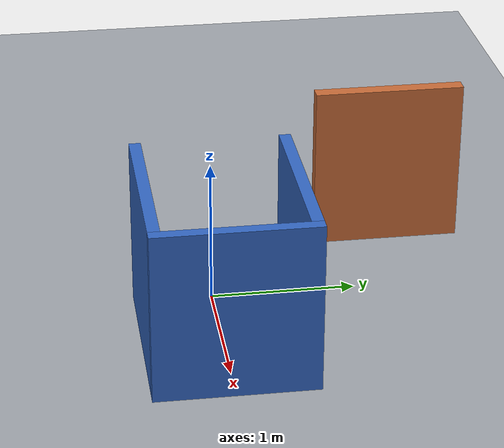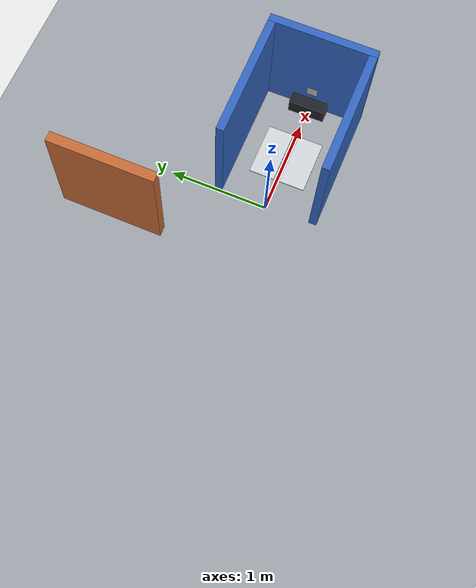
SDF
<?xml version="1.0"?>
<sdf version="1.6">
  <world name="go2w_parking_3d">
    <gravity>0 0 -9.81</gravity>
    <physics type="ode">
      <max_step_size>0.004</max_step_size>
      <real_time_update_rate>250</real_time_update_rate>
      <real_time_factor>1.0</real_time_factor>
      <ode><solver><type>quick</type><iters>20</iters><sor>1.3</sor></solver></ode>
    </physics>
    <scene>
      <ambient>0.68 0.68 0.68 1</ambient>
      <background>0.82 0.86 0.90 1</background>
      <shadows>false</shadows>
    </scene>
    <light name="sun" type="directional">
      <cast_shadows>false</cast_shadows>
      <pose>0 0 8 0 0 0</pose>
      <diffuse>0.95 0.95 0.95 1</diffuse>
      <direction>-0.4 0.2 -1</direction>
    </light>

    <model name="ground"><static>true</static>
      <link name="link">
        <collision name="collision"><geometry><box><size>12 6 0.08</size></box></geometry></collision>
        <visual name="visual"><geometry><box><size>12 6 0.08</size></box></geometry>
          <material><ambient>0.50 0.52 0.55 1</ambient><diffuse>0.62 0.64 0.67 1</diffuse></material>
        </visual>
      </link>
    </model>

    <!-- U-shaped kennel, wall height 1.2 m. Opening faces -X.
         Tag face at x=1.25; pad center 0.55 m in front of Tag. -->
    <model name="kennel_back"><static>true</static><pose>1.29 0 0.60 0 0 0</pose>
      <link name="link">
        <collision name="collision"><geometry><box><size>0.08 1.08 1.20</size></box></geometry></collision>
        <visual name="visual"><geometry><box><size>0.08 1.08 1.20</size></box></geometry>
          <material><ambient>0.16 0.32 0.62 1</ambient><diffuse>0.20 0.40 0.76 1</diffuse></material>
        </visual>
        <!-- tag36h11 ID 0, 0.11 m black square, center 0.30 m above ground. -->
        <visual name="apriltag_36h11_0"><pose>-0.041 0 -0.30 0 -1.570796 0</pose>
          <geometry><plane><normal>0 0 1</normal><size>0.11 0.11</size></plane></geometry>
          <material><script>
            <uri>file://media/materials/scripts</uri>
            <uri>file://media/materials/textures</uri>
            <name>Go2WSim/AprilTagWall</name>
          </script></material>
        </visual>
      </link>
    </model>
    <model name="kennel_left"><static>true</static><pose>0.625 0.50 0.60 0 0 0</pose>
      <link name="link">
        <collision name="collision"><geometry><box><size>1.25 0.08 1.20</size></box></geometry></collision>
        <visual name="visual"><geometry><box><size>1.25 0.08 1.20</size></box></geometry>
          <material><ambient>0.16 0.32 0.62 1</ambient><diffuse>0.20 0.40 0.76 1</diffuse></material>
        </visual>
      </link>
    </model>
    <model name="kennel_right"><static>true</static><pose>0.625 -0.50 0.60 0 0 0</pose>
      <link name="link">
        <collision name="collision"><geometry><box><size>1.25 0.08 1.20</size></box></geometry></collision>
        <visual name="visual"><geometry><box><size>1.25 0.08 1.20</size></box></geometry>
          <material><ambient>0.16 0.32 0.62 1</ambient><diffuse>0.20 0.40 0.76 1</diffuse></material>
        </visual>
      </link>
    </model>

    <model name="charger"><static>true</static><pose>1.18 0 0.10 0 0 0</pose>
      <link name="link">
        <collision name="collision"><geometry><box><size>0.12 0.38 0.20</size></box></geometry></collision>
        <visual name="visual"><geometry><box><size>0.12 0.38 0.20</size></box></geometry>
          <material><ambient>0.08 0.09 0.11 1</ambient><diffuse>0.12 0.13 0.15 1</diffuse></material>
        </visual>
      </link>
    </model>

    <!-- Charging pad 1.2 x 0.7 m; center 0.55 m in front of Tag (x=1.25). -->
    <model name="charging_pad"><static>true</static><pose>0.70 0 0.025 0 0 0</pose>
      <link name="link">
        <collision name="frame"><geometry><box><size>1.20 0.70 0.03</size></box></geometry></collision>
        <visual name="frame"><geometry><box><size>1.20 0.70 0.03</size></box></geometry>
          <material><ambient>0.06 0.06 0.07 1</ambient><diffuse>0.10 0.10 0.11 1</diffuse></material>
        </visual>
        <visual name="contact_left"><pose>-0.12 0.16 0.018 0 0 0</pose>
          <geometry><box><size>0.55 0.26 0.01</size></box></geometry>
          <material><ambient>0.70 0.72 0.74 1</ambient><diffuse>0.82 0.84 0.86 1</diffuse></material>
        </visual>
        <visual name="contact_right"><pose>-0.12 -0.16 0.018 0 0 0</pose>
          <geometry><box><size>0.55 0.26 0.01</size></box></geometry>
          <material><ambient>0.70 0.72 0.74 1</ambient><diffuse>0.82 0.84 0.86 1</diffuse></material>
        </visual>
      </link>
    </model>
    <model name="charging_bridge"><static>true</static><pose>1.215 0 0.02 0 0 0</pose>
      <link name="link">
        <visual name="rails"><geometry><box><size>0.06 0.40 0.02</size></box></geometry>
          <material><ambient>0.08 0.08 0.09 1</ambient><diffuse>0.12 0.12 0.13 1</diffuse></material>
        </visual>
        <visual name="gap_mark"><pose>0 0 0.012 0 0 0</pose>
          <geometry><box><size>0.04 0.12 0.005</size></box></geometry>
          <material><ambient>0.45 0.46 0.48 1</ambient></material>
        </visual>
      </link>
    </model>

    <!-- Spawn region marker (visual only): 2 m square centered 2 m in front of kennel. -->
    <model name="spawn_region"><static>true</static><pose>-2.0 0 0.01 0 0 0</pose>
      <link name="link">
        <visual name="visual"><geometry><box><size>2.0 2.0 0.01</size></box></geometry>
          <material><ambient>0.95 0.80 0.20 0.35</ambient><diffuse>1.0 0.85 0.25 0.35</diffuse></material>
        </visual>
      </link>
    </model>

    <!-- A freestanding occluder can be moved in Gazebo to verify that both the
         camera and AprilTag detector lose the target behind solid geometry. -->
    <model name="movable_occlusion_wall"><static>false</static><pose>-0.65 1.35 0.60 0 0 0</pose>
      <link name="link">
        <inertial><mass>18</mass><inertia><ixx>2.0</ixx><iyy>0.6</iyy><izz>2.2</izz></inertia></inertial>
        <collision name="collision"><geometry><box><size>0.10 1.05 1.20</size></box></geometry></collision>
        <visual name="visual"><geometry><box><size>0.10 1.05 1.20</size></box></geometry>
          <material><ambient>0.65 0.34 0.18 1</ambient><diffuse>0.78 0.42 0.22 1</diffuse></material>
        </visual>
      </link>
    </model>
  </world>
</sdf>
